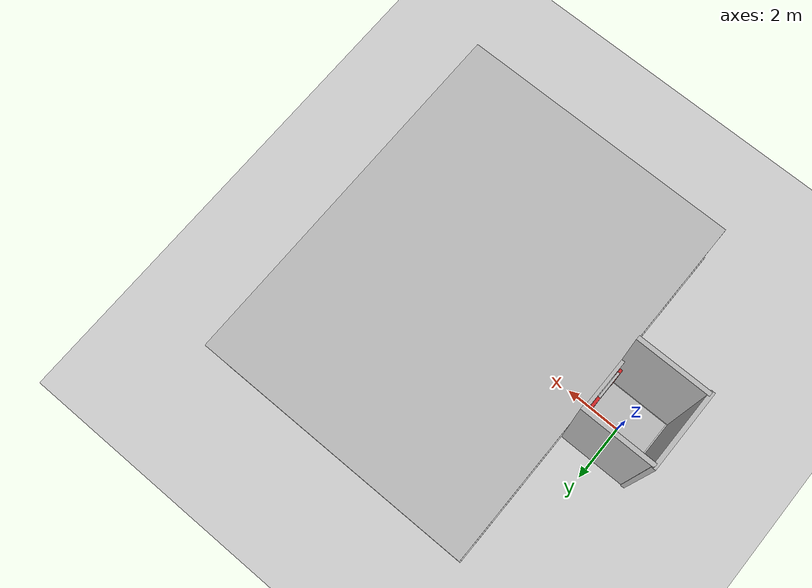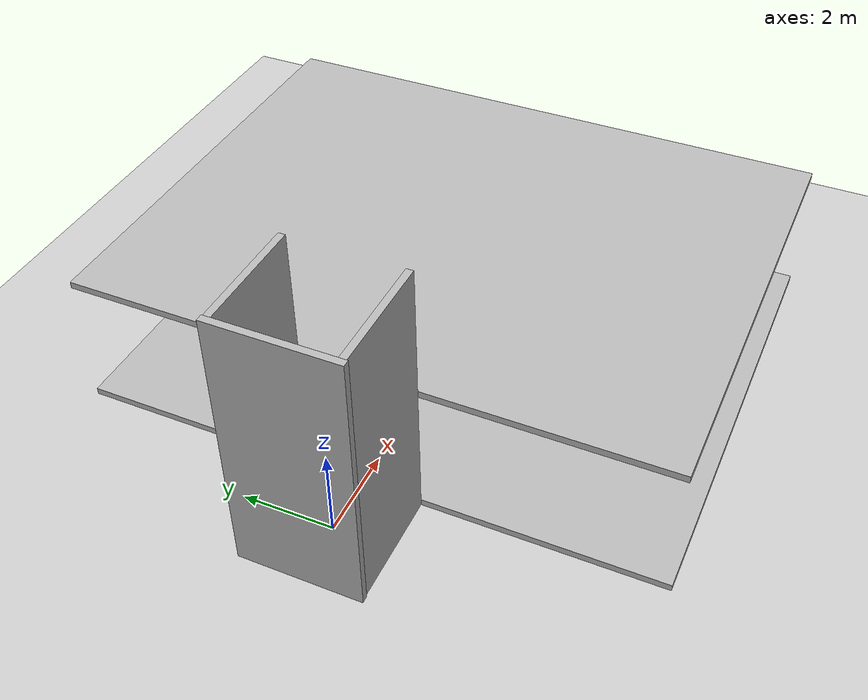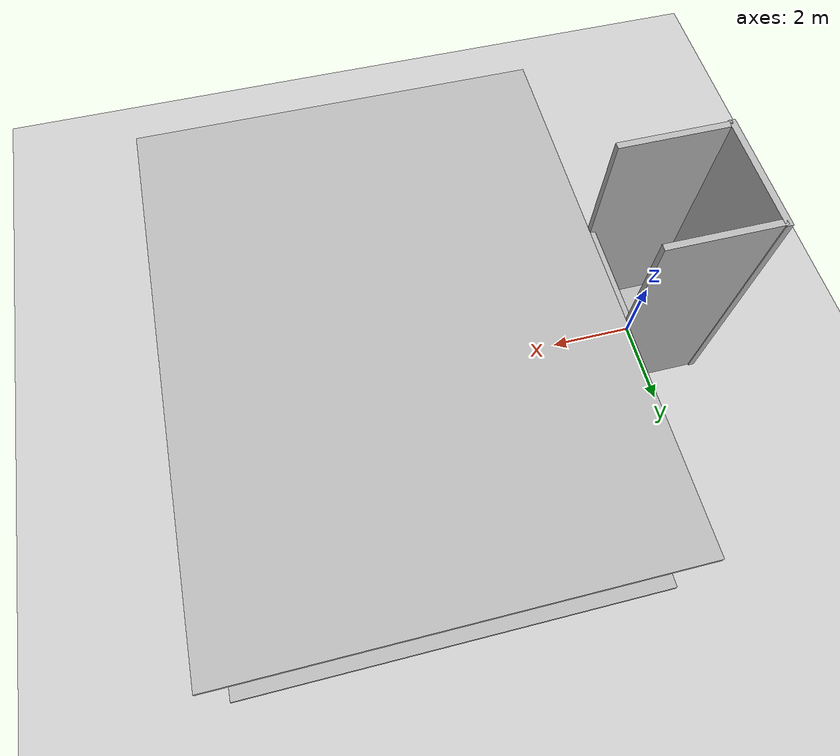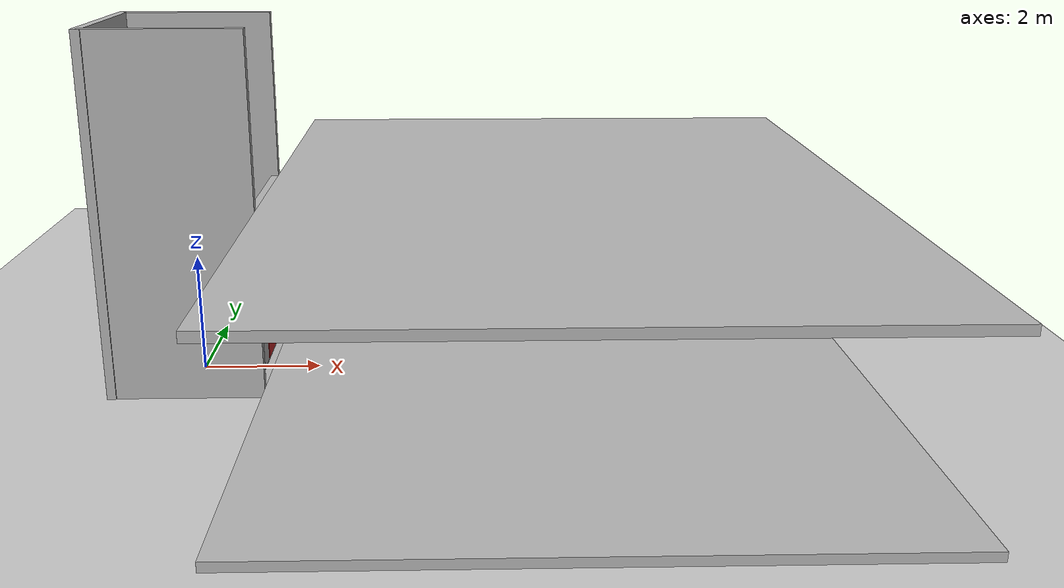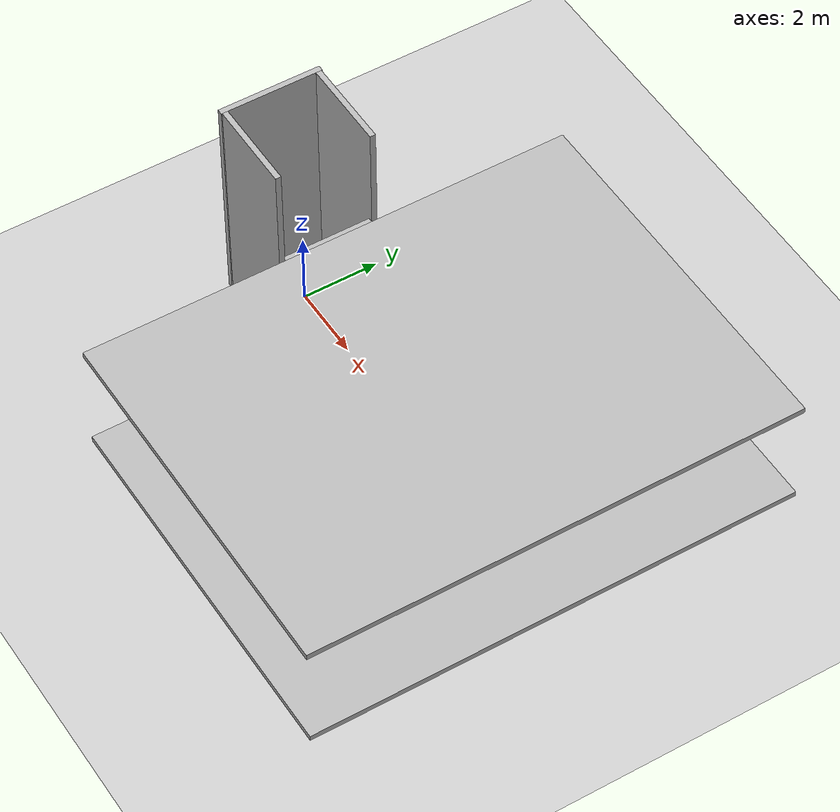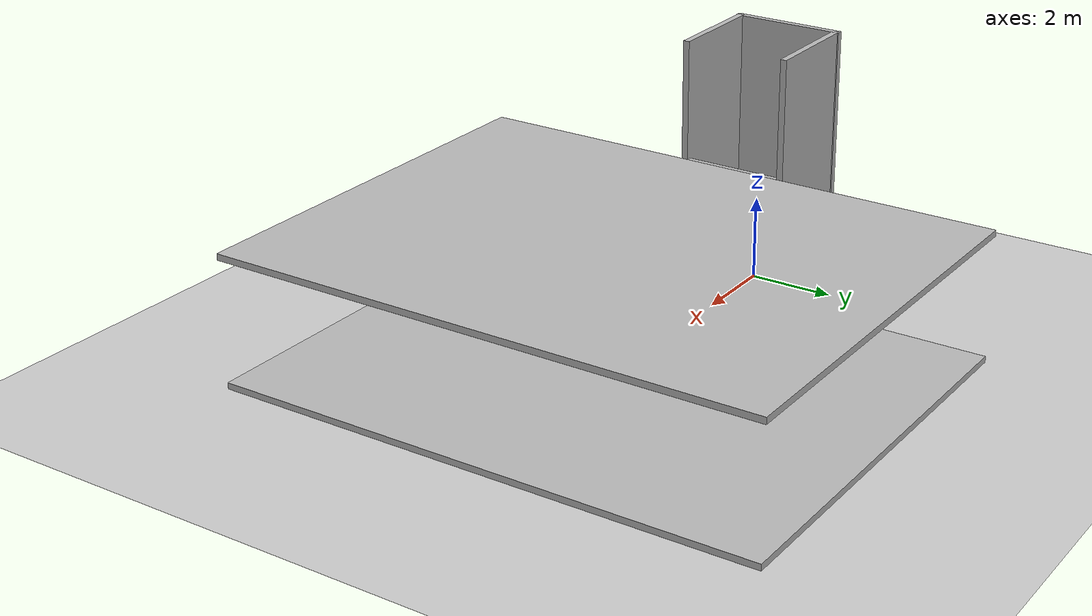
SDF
<sdf version="1.5">
 <world name="default">
  <include><uri>model://sun</uri></include>
  <include><uri>model://ground_plane</uri></include>
  <plugin filename="libSimEventsPlugin.so" name="elevator_event_plugin">
   <region><name>region1</name><volume><min>1.5 -1 0</min><max>2.5 1 1</max></volume></region>
   <region><name>region2</name><volume><min>1.5 -1 3</min><max>2.5 1 4</max></volume></region>
   <event>
    <name>region1_event</name>
    <type>occupied</type>
    <region>region1</region>
    <topic>~/elevator</topic>
    <msg_data>0</msg_data>
   </event>
   <event>
    <name>region2_event</name>
    <type>occupied</type>
    <region>region2</region>
    <topic>~/elevator</topic>
    <msg_data>1</msg_data>
   </event>
  </plugin>
  <model name="elevator">
   <pose>0 0 0.075 0 0 0</pose>
   <link name="link">
    <inertial><mass>800</mass></inertial>
    <collision name="floor_collision"><geometry><box><size>2.25 2.25 0.15</size></box></geometry></collision>
    <visual name="floor_visual"><geometry><box><size>2.25 2.25 0.15</size></box></geometry></visual>
    <collision name="wall1_collision">
     <pose>1.0745 0.5725 1.125 0 0 0</pose>
     <geometry><box><size>0.1 1.15 2.25</size></box></geometry>
    </collision>
    <visual name="wall1_visual">
     <pose>1.0745 0.5725 1.125 0 0 0</pose>
     <geometry><box><size>0.1 1.15 2.25</size></box></geometry>
     <material><script><name>Gazebo/Red</name></script></material>
    </visual>
    <collision name="wall2_collision">
     <pose>1.0745 -1.0625 1.125 0 0 0</pose>
     <geometry><box><size>0.1 0.125 2.25</size></box></geometry>
    </collision>
    <visual name="wall2_visual">
     <pose>1.0745 -1.0625 1.125 0 0 0</pose>
     <geometry><box><size>0.1 0.125 2.25</size></box></geometry>
     <material><script><name>Gazebo/Red</name></script></material>
    </visual>
   </link>
   <link name="door">
    <pose>1.0745 -0.5 1.125 0 0 0</pose>
    <collision name="collision"><geometry><box><size>0.08 1.0 2.25</size></box></geometry></collision>
    <visual name="visual"><geometry><box><size>0.08 1.0 2.25</size></box></geometry></visual>
   </link>
   <joint name="door" type="prismatic">
    <parent>link</parent>
    <child>door</child>
    <axis>
     <xyz>0 1 0</xyz>
     <limit><lower>0</lower><upper>1</upper><effort>10</effort></limit>
     <dynamics><damping>2</damping></dynamics>
    </axis>
   </joint>
   <joint name="lift" type="prismatic">
    <parent>world</parent>
    <child>link</child>
    <axis>
     <xyz>0 0 1</xyz>
     <limit><lower>0</lower><upper>10</upper><effort>100000</effort></limit>
     <dynamics><damping>50</damping></dynamics>
    </axis>
    <physics><ode><implicit_spring_damper>1</implicit_spring_damper></ode></physics>
   </joint>
   <plugin filename="libElevatorPlugin.so" name="elevator_plugin">
    <lift_joint>elevator::lift</lift_joint>
    <door_joint>elevator::door</door_joint>
    <floor_height>3.075</floor_height>
    <door_wait_time>10</door_wait_time>
    <topic>~/elevator</topic>
   </plugin>
  </model>
  <model name="elevator_shaft">
   <static>true</static>
   <link name="link">
    <collision name="shaft_wall1_collision">
     <pose>0 1.25 3 0 0 0</pose>
     <geometry><box><size>2.5 0.15 6</size></box></geometry>
    </collision>
    <visual name="shaft_wall1_visual">
     <pose>0 1.25 3 0 0 0</pose>
     <geometry><box><size>2.5 0.15 6</size></box></geometry>
    </visual>
    <collision name="shaft_wall2_collision">
     <pose>0 -1.25 3 0 0 0</pose>
     <geometry><box><size>2.5 0.15 6</size></box></geometry>
    </collision>
    <visual name="shaft_wall2_visual">
     <pose>0 -1.25 3 0 0 0</pose>
     <geometry><box><size>2.5 0.15 6</size></box></geometry>
    </visual>
    <collision name="shaft_wall3_collision">
     <pose>-1.25 0 3 0 0 0</pose>
     <geometry><box><size>0.15 2.7 6</size></box></geometry>
    </collision>
    <visual name="shaft_wall3_visual">
     <pose>-1.25 0 3 0 0 0</pose>
     <geometry><box><size>0.15 2.7 6</size></box></geometry>
    </visual>
    <collision name="floor0_collision">
     <pose>1.19 0 0.075 0 0 0</pose>
     <geometry><box><size>0.12 2.5 0.15</size></box></geometry>
    </collision>
    <visual name="floor0_visual">
     <pose>1.19 0 0.075 0 0 0</pose>
     <geometry><box><size>0.12 2.5 0.15</size></box></geometry>
    </visual>
    <collision name="floor1_collision">
     <pose>1.19 0 3.075 0 0 0</pose>
     <geometry><box><size>0.12 2.5 0.15</size></box></geometry>
    </collision>
    <visual name="floor1_visual">
     <pose>1.19 0 3.075 0 0 0</pose>
     <geometry><box><size>0.12 2.5 0.15</size></box></geometry>
    </visual>
   </link>
  </model>
  <model name="floor0">
   <pose>6.25 0 0.075 0 0 0</pose>
   <static>true</static>
   <link name="link">
    <collision name="floor0_collision"><geometry><box><size>10.0 13.0 0.15</size></box></geometry></collision>
    <visual name="floor0_visual"><geometry><box><size>10.0 13.0 0.15</size></box></geometry></visual>
   </link>
  </model>
  <model name="floor1">
   <pose>6.25 0 3.075 0 0 0</pose>
   <static>true</static>
   <link name="link">
    <collision name="floor1_collision"><geometry><box><size>10.0 13.0 0.15</size></box></geometry></collision>
    <visual name="floor1_visual"><geometry><box><size>10.0 13.0 0.15</size></box></geometry></visual>
   </link>
  </model>
 </world>
</sdf>
